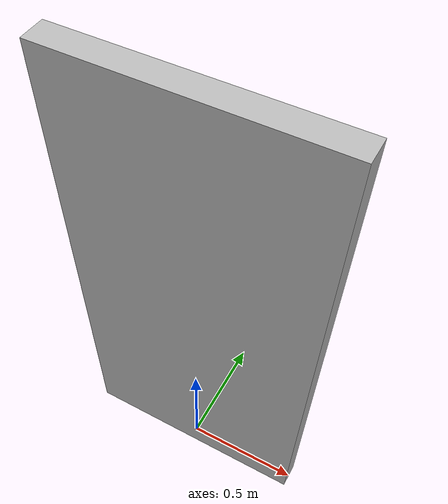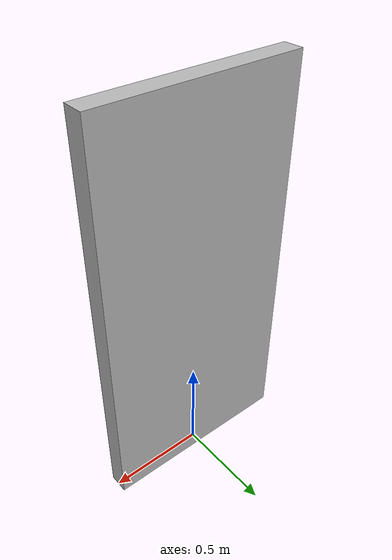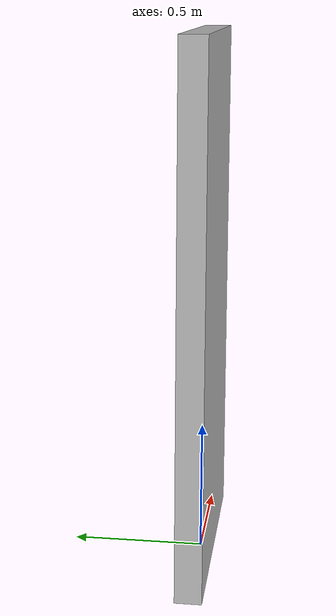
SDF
<?xml version="1.0" ?>
<sdf version="1.10">
  <model name="maze_wall">
    <static>true</static>
    <link name="wall_link">
      <visual name="wall_visual">
        <geometry>
          <mesh>
            <uri>model://maze_wall/meshes/maze_wall.dae</uri>
          </mesh>
        </geometry>
      </visual>

      <collision name="wall_collision">
        <geometry>
          <mesh>
            <uri>model://maze_wall/meshes/maze_wall.dae</uri>
          </mesh>
        </geometry>
      </collision>
    </link>
  </model>
</sdf>
